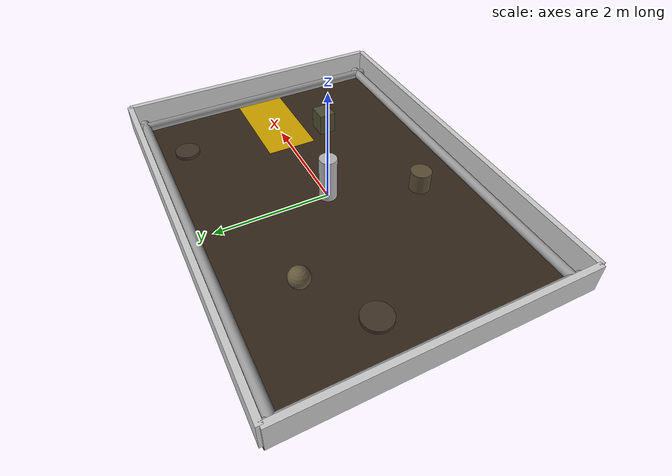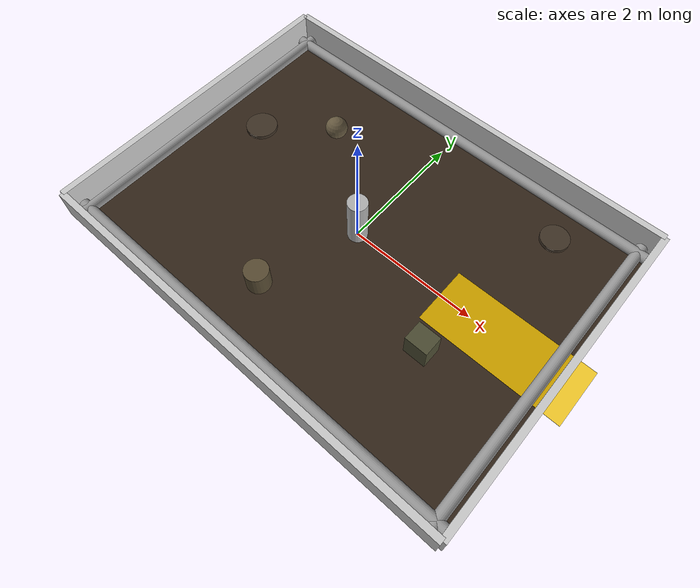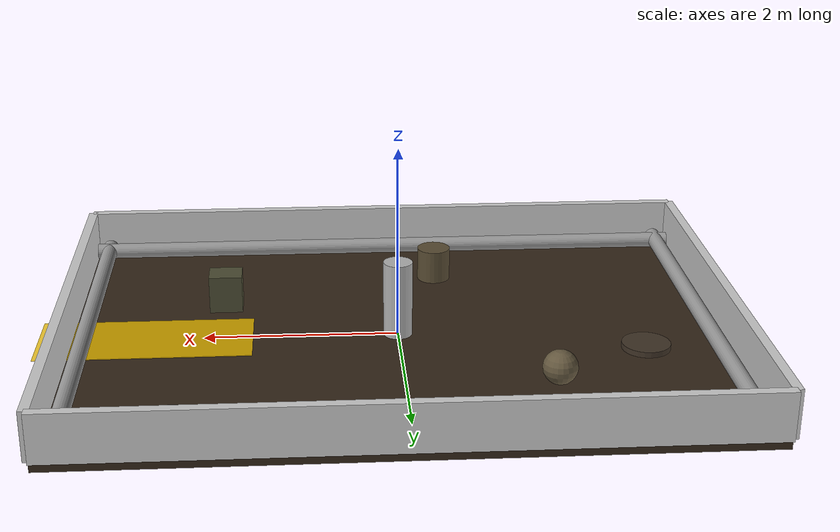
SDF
<sdf version='1.10'>
  <world name='lunabotics_arena'>
    <physics name='1ms' type='ignored'>
      <max_step_size>0.05</max_step_size>
      <real_time_factor>1</real_time_factor>
      <real_time_update_rate>100</real_time_update_rate>
    </physics>

    <plugin name='gz::sim::systems::Physics' filename='gz-sim-physics-system'/>
    <plugin name='gz::sim::systems::UserCommands' filename='gz-sim-user-commands-system'/>
    <plugin name='gz::sim::systems::SceneBroadcaster' filename='gz-sim-scene-broadcaster-system'/>
    <plugin name='gz::sim::systems::Sensors' filename='gz-sim-sensors-system'>
      <render_engine>ogre2</render_engine>
    </plugin>
    <plugin name='gz::sim::systems::Contact' filename='gz-sim-contact-system'/>

    <gravity>0 0 -9.8</gravity>
    <magnetic_field>5.5e-06 2.3e-05 -4.2e-05</magnetic_field>
    <atmosphere type='adiabatic'/>

    <scene>
      <ambient>0.6 0.6 0.6 1</ambient>
      <background>0.8 0.8 0.8 1</background>
      <shadows>true</shadows>
    </scene>

    <!-- Arena floor (BP-1 regolith simulant) -->
    <model name='arena_floor'>
      <static>true</static>
      <link name='link'>
        <collision name='collision'>
          <geometry>
            <box><size>6.8 5.0 0.1</size></box>
          </geometry>
          <surface>
            <friction>
              <ode/>
            </friction>
            <bounce/>
            <contact/>
          </surface>
        </collision>
        <visual name='visual'>
          <geometry>
            <box><size>6.8 5.0 0.1</size></box>
          </geometry>
          <material>
            <diffuse>0.2 0.15 0.1 1.0</diffuse> <!-- Dark basalt color -->
            <specular>0.1 0.1 0.1 1.0</specular>
          </material>
        </visual>
        <pose>0 0 -0.05 0 0 0</pose>
      </link>
    </model>

    <!-- Arena walls -->
    <model name='north_wall'>
      <pose>0 2.5 0.25 0 0 0</pose>
      <static>true</static>
      <link name='link'>
        <collision name='collision'>
          <geometry>
            <box><size>6.8 0.1 0.5</size></box>
          </geometry>
        </collision>
        <visual name='visual'>
          <geometry>
            <box><size>6.8 0.1 0.5</size></box>
          </geometry>
          <material>
            <diffuse>0.8 0.8 0.8 1.0</diffuse>
          </material>
        </visual>
      </link>
    </model>

    <model name='south_wall'>
      <pose>0 -2.5 0.25 0 0 0</pose>
      <static>true</static>
      <link name='link'>
        <collision name='collision'>
          <geometry>
            <box><size>6.8 0.1 0.5</size></box>
          </geometry>
        </collision>
        <visual name='visual'>
          <geometry>
            <box><size>6.8 0.1 0.5</size></box>
          </geometry>
          <material>
            <diffuse>0.8 0.8 0.8 1.0</diffuse>
          </material>
        </visual>
      </link>
    </model>

    <model name='east_wall'>
      <pose>3.4 0 0.25 0 0 0</pose>
      <static>true</static>
      <link name='link'>
        <collision name='collision'>
          <geometry>
            <box><size>0.1 5.0 0.5</size></box>
          </geometry>
        </collision>
        <visual name='visual'>
          <geometry>
            <box><size>0.1 5.0 0.5</size></box>
          </geometry>
          <material>
            <diffuse>0.8 0.8 0.8 1.0</diffuse>
          </material>
        </visual>
      </link>
    </model>

    <model name='west_wall'>
      <pose>-3.4 0 0.25 0 0 0</pose>
      <static>true</static>
      <link name='link'>
        <collision name='collision'>
          <geometry>
            <box><size>0.1 5.0 0.5</size></box>
          </geometry>
        </collision>
        <visual name='visual'>
          <geometry>
            <box><size>0.1 5.0 0.5</size></box>
          </geometry>
          <material>
            <diffuse>0.8 0.8 0.8 1.0</diffuse>
          </material>
        </visual>
      </link>
    </model>

    <!-- Perimeter ducting (17cm diameter) -->
    <model name='north_duct'>
      <pose>0 2.32 0.085 0 1.57 0</pose>
      <static>true</static>
      <link name='link'>
        <collision name='collision'>
          <geometry>
            <cylinder><radius>0.085</radius><length>6.8</length></cylinder>
          </geometry>
        </collision>
        <visual name='visual'>
          <geometry>
            <cylinder><radius>0.085</radius><length>6.8</length></cylinder>
          </geometry>
          <material>
            <diffuse>0.6 0.6 0.6 1.0</diffuse>
          </material>
        </visual>
      </link>
    </model>

    <model name='south_duct'>
      <pose>0 -2.32 0.085 0 1.57 0</pose>
      <static>true</static>
      <link name='link'>
        <collision name='collision'>
          <geometry>
            <cylinder><radius>0.085</radius><length>6.8</length></cylinder>
          </geometry>
        </collision>
        <visual name='visual'>
          <geometry>
            <cylinder><radius>0.085</radius><length>6.8</length></cylinder>
          </geometry>
          <material>
            <diffuse>0.6 0.6 0.6 1.0</diffuse>
          </material>
        </visual>
      </link>
    </model>

    <model name='east_duct'>
      <pose>3.22 0 0.085 1.57 0 0</pose>
      <static>true</static>
      <link name='link'>
        <collision name='collision'>
          <geometry>
            <cylinder><radius>0.085</radius><length>5.0</length></cylinder>
          </geometry>
        </collision>
        <visual name='visual'>
          <geometry>
            <cylinder><radius>0.085</radius><length>5.0</length></cylinder>
          </geometry>
          <material>
            <diffuse>0.6 0.6 0.6 1.0</diffuse>
          </material>
        </visual>
      </link>
    </model>

    <model name='west_duct'>
      <pose>-3.22 0 0.085 1.57 0 0</pose>
      <static>true</static>
      <link name='link'>
        <collision name='collision'>
          <geometry>
            <cylinder><radius>0.085</radius><length>5.0</length></cylinder>
          </geometry>
        </collision>
        <visual name='visual'>
          <geometry>
            <cylinder><radius>0.085</radius><length>5.0</length></cylinder>
          </geometry>
          <material>
            <diffuse>0.6 0.6 0.6 1.0</diffuse>
          </material>
        </visual>
      </link>
    </model>

    <!-- Central infrastructure support column -->
    <model name='central_column'>
      <pose>0 0 0.4 0 0 0</pose>
      <static>true</static>
      <link name='link'>
        <collision name='collision'>
          <geometry>
            <cylinder><radius>0.15</radius><length>0.8</length></cylinder>
          </geometry>
        </collision>
        <visual name='visual'>
          <geometry>
            <cylinder><radius>0.15</radius><length>0.8</length></cylinder>
          </geometry>
          <material>
            <diffuse>0.7 0.7 0.7 1.0</diffuse>
          </material>
        </visual>
      </link>
    </model>

    <!-- Boulder obstacles in obstacle zone (30-40cm diameter) -->
    <model name='boulder_1'>
      <pose>-1.5 1.2 0.15 0 0 0</pose>
      <static>true</static>
      <link name='link'>
        <collision name='collision'>
          <geometry>
            <sphere><radius>0.175</radius></sphere>
          </geometry>
        </collision>
        <visual name='visual'>
          <geometry>
            <sphere><radius>0.175</radius></sphere>
          </geometry>
          <material>
            <diffuse>0.4 0.35 0.25 1.0</diffuse>
          </material>
        </visual>
      </link>
    </model>

    <model name='boulder_2'>
      <pose>1.8 -0.8 0.2 0 0 0</pose>
      <static>true</static>
      <link name='link'>
        <collision name='collision'>
          <geometry>
            <box><size>0.35 0.3 0.4</size></box>
          </geometry>
        </collision>
        <visual name='visual'>
          <geometry>
            <box><size>0.35 0.3 0.4</size></box>
          </geometry>
          <material>
            <diffuse>0.3 0.3 0.2 1.0</diffuse>
          </material>
        </visual>
      </link>
    </model>

    <model name='boulder_3'>
      <pose>-0.5 -1.5 0.18 0 0 0.5</pose>
      <static>true</static>
      <link name='link'>
        <collision name='collision'>
          <geometry>
            <cylinder><radius>0.18</radius><length>0.36</length></cylinder>
          </geometry>
        </collision>
        <visual name='visual'>
          <geometry>
            <cylinder><radius>0.18</radius><length>0.36</length></cylinder>
          </geometry>
          <material>
            <diffuse>0.35 0.3 0.2 1.0</diffuse>
          </material>
        </visual>
      </link>
    </model>

    <!-- Crater obstacles (simulated as shallow depressions with rim) -->
    <model name='crater_1_rim'>
      <pose>-2.5 0.5 0.03 0 0 0</pose>
      <static>true</static>
      <link name='link'>
        <collision name='collision'>
          <geometry>
            <cylinder><radius>0.25</radius><length>0.06</length></cylinder>
          </geometry>
        </collision>
        <visual name='visual'>
          <geometry>
            <cylinder><radius>0.25</radius><length>0.06</length></cylinder>
          </geometry>
          <material>
            <diffuse>0.25 0.2 0.15 1.0</diffuse>
          </material>
        </visual>
      </link>
    </model>

    <model name='crater_2_rim'>
      <pose>2.2 1.8 0.03 0 0 0</pose>
      <static>true</static>
      <link name='link'>
        <collision name='collision'>
          <geometry>
            <cylinder><radius>0.22</radius><length>0.06</length></cylinder>
          </geometry>
        </collision>
        <visual name='visual'>
          <geometry>
            <cylinder><radius>0.22</radius><length>0.06</length></cylinder>
          </geometry>
          <material>
            <diffuse>0.25 0.2 0.15 1.0</diffuse>
          </material>
        </visual>
      </link>
    </model>

    <!-- Construction zone markers (berm target area 2.2m × 0.9m) -->
    <model name='construction_zone_marker'>
      <pose>2.6 0 0.005 0 0 0</pose>
      <static>true</static>
      <link name='link'>
        <collision name='collision'>
          <geometry>
            <box><size>2.2 0.9 0.01</size></box>
          </geometry>
        </collision>
        <visual name='visual'>
          <geometry>
            <box><size>2.2 0.9 0.01</size></box>
          </geometry>
          <material>
            <diffuse>1.0 0.8 0.0 0.8</diffuse> <!-- Yellow marking -->
          </material>
        </visual>
      </link>
    </model>

    <!-- Competition lighting -->
    <light name='arena_light_1' type='directional'>
      <cast_shadows>true</cast_shadows>
      <pose>0 0 8 0 0 0</pose>
      <diffuse>0.9 0.9 0.9 1</diffuse>
      <specular>0.3 0.3 0.3 1</specular>
      <direction>-0.3 -0.2 -1</direction>
    </light>

    <light name='arena_light_2' type='directional'>
      <cast_shadows>false</cast_shadows>
      <pose>3 3 6 0 0 0</pose>
      <diffuse>0.7 0.7 0.7 1</diffuse>
      <specular>0.1 0.1 0.1 1</specular>
      <direction>-0.5 -0.5 -1</direction>
    </light>

  </world>
</sdf>
